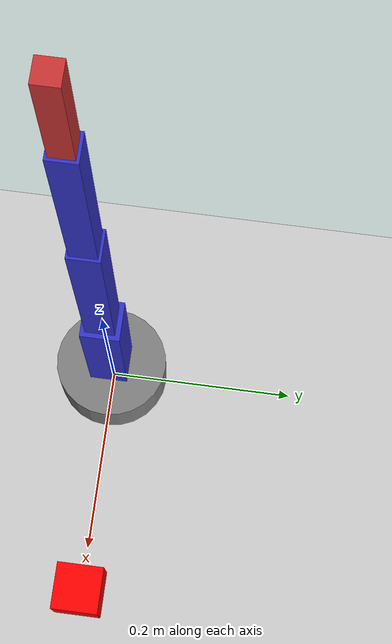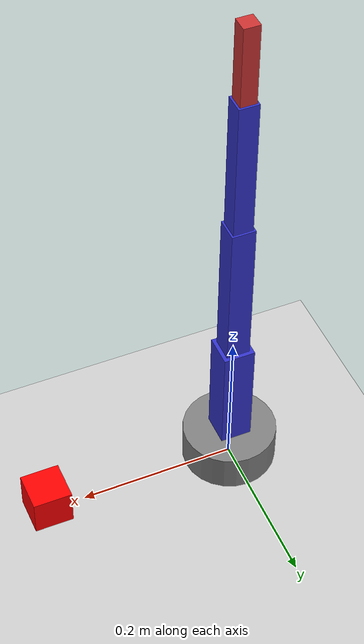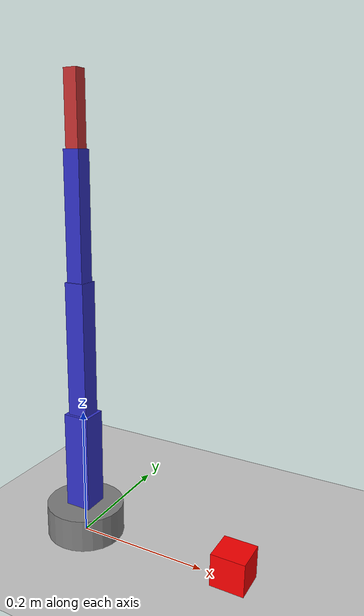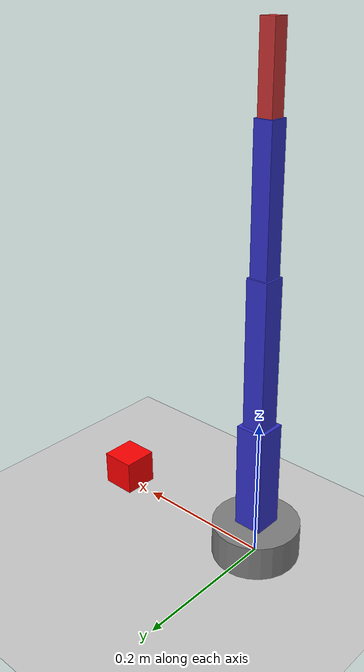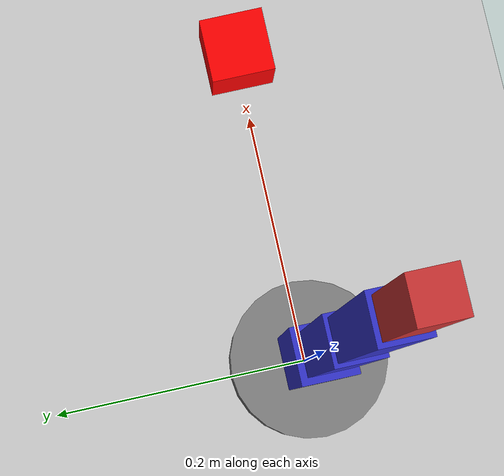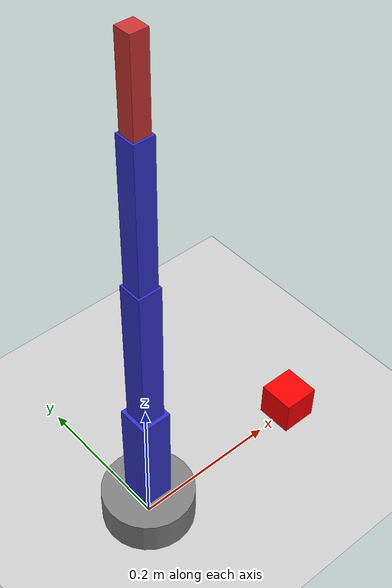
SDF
<?xml version="1.0"?>
<sdf version="1.9">
  <world name="arm_world">

    <plugin filename="gz-sim-physics-system"
            name="gz::sim::systems::Physics"/>
    <plugin filename="gz-sim-scene-broadcaster-system"
            name="gz::sim::systems::SceneBroadcaster"/>
    <plugin filename="gz-sim-user-commands-system"
            name="gz::sim::systems::UserCommands"/>

    <light type="directional" name="sun">
      <cast_shadows>true</cast_shadows>
      <pose>0 0 10 0 0 0</pose>
      <diffuse>1 1 1 1</diffuse>
      <specular>0.5 0.5 0.5 1</specular>
      <direction>-0.5 0.1 -0.9</direction>
    </light>

    <model name="ground_plane">
      <static>true</static>
      <link name="link">
        <collision name="collision">
          <geometry>
            <plane><normal>0 0 1</normal><size>100 100</size></plane>
          </geometry>
        </collision>
        <visual name="visual">
          <geometry>
            <plane><normal>0 0 1</normal><size>100 100</size></plane>
          </geometry>
          <material>
            <ambient>0.8 0.8 0.8 1</ambient>
            <diffuse>0.8 0.8 0.8 1</diffuse>
          </material>
        </visual>
      </link>
    </model>

    <include>
      <uri>model://arm</uri>
    </include>

    <include>
      <uri>model://object</uri>
    </include>

  </world>
</sdf>

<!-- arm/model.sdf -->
<sdf version="1.9">
  <model name="arm">
    <pose>0 0 0 0 0 0</pose>

    <!-- Base -->
    <link name="base">
      <pose>0 0 0.025 0 0 0</pose>
      <inertial>
        <mass>1.0</mass>
        <inertia><ixx>0.01</ixx><iyy>0.01</iyy><izz>0.01</izz><ixy>0</ixy><ixz>0</ixz><iyz>0</iyz></inertia>
      </inertial>
      <visual name="base_vis">
        <geometry><cylinder><radius>0.06</radius><length>0.05</length></cylinder></geometry>
        <material><ambient>0.5 0.5 0.5 1</ambient><diffuse>0.5 0.5 0.5 1</diffuse></material>
      </visual>
      <collision name="base_col">
        <geometry><cylinder><radius>0.06</radius><length>0.05</length></cylinder></geometry>
      </collision>
    </link>

    <!-- Link 1 -->
    <link name="link1">
      <pose>0 0 0.125 0 0 0</pose>
      <inertial>
        <mass>0.5</mass>
        <inertia><ixx>0.005</ixx><iyy>0.005</iyy><izz>0.001</izz><ixy>0</ixy><ixz>0</ixz><iyz>0</iyz></inertia>
      </inertial>
      <visual name="link1_vis">
        <geometry><box><size>0.04 0.04 0.15</size></box></geometry>
        <material><ambient>0.2 0.2 0.8 1</ambient><diffuse>0.2 0.2 0.8 1</diffuse></material>
      </visual>
      <collision name="link1_col">
        <geometry><box><size>0.04 0.04 0.15</size></box></geometry>
      </collision>
    </link>

    <joint name="joint1" type="revolute">
      <parent>base</parent>
      <child>link1</child>
      <pose>0 0 -0.075 0 0 0</pose>
      <axis>
        <xyz>0 0 1</xyz>
        <limit><lower>-1.57</lower><upper>1.57</upper><effort>10</effort><velocity>1</velocity></limit>
      </axis>
    </joint>

    <!-- Link 2 -->
    <link name="link2">
      <pose>0 0 0.30 0 0 0</pose>
      <inertial>
        <mass>0.4</mass>
        <inertia><ixx>0.004</ixx><iyy>0.004</iyy><izz>0.001</izz><ixy>0</ixy><ixz>0</ixz><iyz>0</iyz></inertia>
      </inertial>
      <visual name="link2_vis">
        <geometry><box><size>0.03 0.03 0.20</size></box></geometry>
        <material><ambient>0.2 0.2 0.8 1</ambient><diffuse>0.2 0.2 0.8 1</diffuse></material>
      </visual>
      <collision name="link2_col">
        <geometry><box><size>0.03 0.03 0.20</size></box></geometry>
      </collision>
    </link>

    <joint name="joint2" type="revolute">
      <parent>link1</parent>
      <child>link2</child>
      <pose>0 0 -0.10 0 0 0</pose>
      <axis>
        <xyz>0 1 0</xyz>
        <limit><lower>-1.57</lower><upper>1.57</upper><effort>10</effort><velocity>1</velocity></limit>
      </axis>
    </joint>

    <!-- Link 3 -->
    <link name="link3">
      <pose>0 0 0.49 0 0 0</pose>
      <inertial>
        <mass>0.3</mass>
        <inertia><ixx>0.003</ixx><iyy>0.003</iyy><izz>0.001</izz><ixy>0</ixy><ixz>0</ixz><iyz>0</iyz></inertia>
      </inertial>
      <visual name="link3_vis">
        <geometry><box><size>0.025 0.025 0.18</size></box></geometry>
        <material><ambient>0.2 0.2 0.8 1</ambient><diffuse>0.2 0.2 0.8 1</diffuse></material>
      </visual>
      <collision name="link3_col">
        <geometry><box><size>0.025 0.025 0.18</size></box></geometry>
      </collision>
    </link>

    <joint name="joint3" type="revolute">
      <parent>link2</parent>
      <child>link3</child>
      <pose>0 0 -0.09 0 0 0</pose>
      <axis>
        <xyz>0 1 0</xyz>
        <limit><lower>-1.57</lower><upper>1.57</upper><effort>10</effort><velocity>1</velocity></limit>
      </axis>
    </joint>

    <!-- Link 4 -->
    <link name="link4">
      <pose>0 0 0.63 0 0 0</pose>
      <inertial>
        <mass>0.2</mass>
        <inertia><ixx>0.002</ixx><iyy>0.002</iyy><izz>0.001</izz><ixy>0</ixy><ixz>0</ixz><iyz>0</iyz></inertia>
      </inertial>
      <visual name="link4_vis">
        <geometry><box><size>0.02 0.02 0.10</size></box></geometry>
        <material><ambient>0.8 0.2 0.2 1</ambient><diffuse>0.8 0.2 0.2 1</diffuse></material>
      </visual>
      <collision name="link4_col">
        <geometry><box><size>0.02 0.02 0.10</size></box></geometry>
      </collision>
    </link>

    <joint name="joint4" type="revolute">
      <parent>link3</parent>
      <child>link4</child>
      <pose>0 0 -0.05 0 0 0</pose>
      <axis>
        <xyz>0 1 0</xyz>
        <limit><lower>-1.57</lower><upper>1.57</upper><effort>10</effort><velocity>1</velocity></limit>
      </axis>
    </joint>

    <plugin filename="gz-sim-joint-position-controller-system"
            name="gz::sim::systems::JointPositionController">
      <joint_name>joint1</joint_name>
      <topic>/arm/joint1</topic>
      <p_gain>10</p_gain>
      <i_gain>0.1</i_gain>
      <d_gain>0.5</d_gain>
    </plugin>

    <plugin filename="gz-sim-joint-position-controller-system"
            name="gz::sim::systems::JointPositionController">
      <joint_name>joint2</joint_name>
      <topic>/arm/joint2</topic>
      <p_gain>10</p_gain>
      <i_gain>0.1</i_gain>
      <d_gain>0.5</d_gain>
    </plugin>

    <plugin filename="gz-sim-joint-position-controller-system"
            name="gz::sim::systems::JointPositionController">
      <joint_name>joint3</joint_name>
      <topic>/arm/joint3</topic>
      <p_gain>10</p_gain>
      <i_gain>0.1</i_gain>
      <d_gain>0.5</d_gain>
    </plugin>

    <plugin filename="gz-sim-joint-position-controller-system"
            name="gz::sim::systems::JointPositionController">
      <joint_name>joint4</joint_name>
      <topic>/arm/joint4</topic>
      <p_gain>10</p_gain>
      <i_gain>0.1</i_gain>
      <d_gain>0.5</d_gain>
    </plugin>

  </model>
</sdf>

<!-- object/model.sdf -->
<sdf version="1.9">
  <model name="object">
    <pose>0.25 0 0.025 0 0 0</pose>
    <link name="object_link">
      <inertial>
        <mass>0.1</mass>
        <inertia><ixx>0.001</ixx><iyy>0.001</iyy><izz>0.001</izz><ixy>0</ixy><ixz>0</ixz><iyz>0</iyz></inertia>
      </inertial>
      <visual name="object_vis">
        <geometry><box><size>0.05 0.05 0.05</size></box></geometry>
        <material><ambient>1 0 0 1</ambient><diffuse>1 0 0 1</diffuse></material>
      </visual>
      <collision name="object_col">
        <geometry><box><size>0.05 0.05 0.05</size></box></geometry>
      </collision>
    </link>
  </model>
</sdf>
